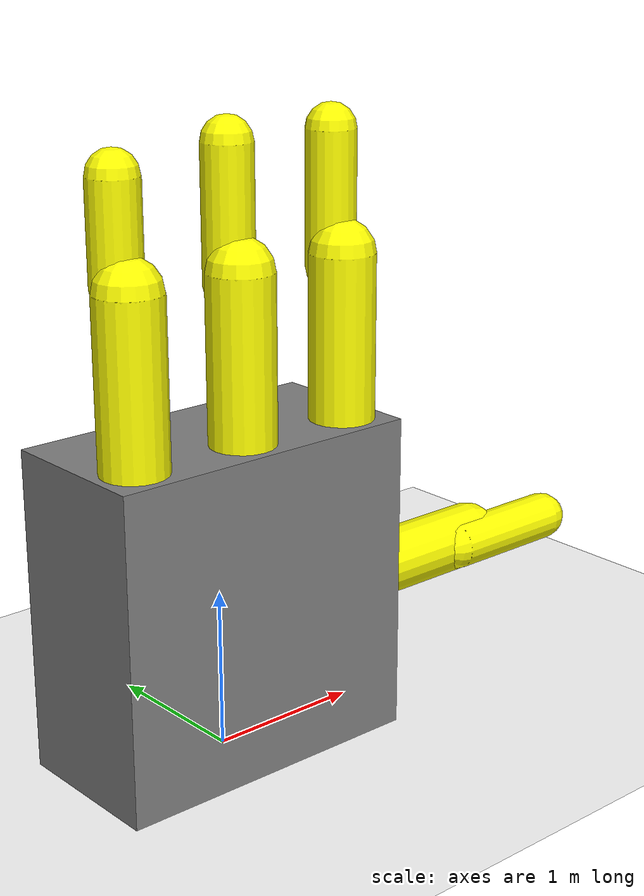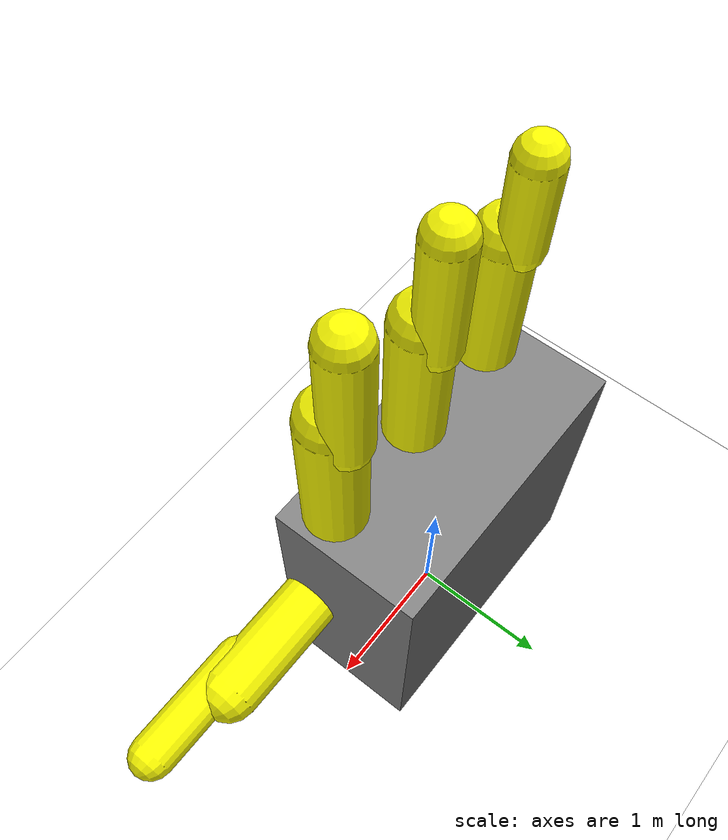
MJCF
<mujoco model="simple-hand-model">
    <option gravity = '0 0 -9.81'/>
    <worldbody>
        <light diffuse = '.5 .5 .5' pos = '0 0 6' dir = '0 0 -1'/>
        <geom type = 'plane' size = '5 5 0.1' rgba = '1 1 1 1'/>
        <body name = 'main' pos = '0 0 1'>
            <joint type = 'free'/>
            <geom type = 'box' size = '1 .5 1'/>
            <body name = 'pinkie' pos = '-0.75 -.25 1.3'>
                <joint type = 'hinge' name = 'pinkie-joint' axis = '1 0 0' range="0 55"/>
                <geom type = 'capsule' size = '.2 .7' rgba = '150 75 0 1'/>
                <body pos = '0 .1 1'>
                    <joint type = 'hinge' name = 'pinkie-tip' axis = '1 0 0' range = '0 45'/>
                    <geom type = 'capsule' size = '.15 .3' rgba = '150 75 0 1'/>
                </body>
            </body>
            <body name = 'middle' pos = '0 -.25 1.3'>
                <joint type = 'hinge' name = 'middle-joint' axis = '1 0 0' range="0 55"/>
                <geom type = 'capsule' size = '.2 .7' rgba = '255 60 0 1'/>
                <body pos = '0 .1  1'>
                    <joint type = 'hinge' name = 'middle-tip' axis = '1 0 0' range = '0 45'/>
                    <geom type = 'capsule' size = '.15 .4' rgba = '150 75 0 1'/>
                </body>
            </body>
            <body name = 'pointer' pos = '0.75 -.25 1.3'>
                <joint type = 'hinge' name = 'pointer-joint' axis = '1 0 0' range="0 55"/>
                <geom type = 'capsule' size = '.2 .7' rgba = '255 60 0 1'/>
                <body pos = '0 .1 1'>
                    <joint type = 'hinge' name = 'pointer-tip' axis = '1 0 0' range = '0 45'/>
                    <geom type = 'capsule' size = '.15 .4' rgba = '150 75 0 1'/>
                </body>
            </body>
            <body name = 'thumb' pos = '1.2 -.3 0' euler = '0 90 0'>
                <joint type = 'hinge' name = 'thumb-joint' axis = '1 0 0' range = '0 90'/>
                <geom type = 'capsule' size = '.2 .6'  rgba = '150 75 0 1'/>
                <body pos = '0 -.1 .8'>
                    <joint type = 'hinge' name = 'thumb-tip' axis = '1 0 0' range = '0 75'/>
                    <geom type = 'capsule' size = '.15 .4' rgba =  '150 75 0 1'/>
                </body>
            </body>
        </body>

    </worldbody>
    <actuator>
        <motor name = 'pinkie-finger' joint = 'pinkie-joint'/>
        <motor name = 'pinkie-finger-tip' joint = 'pinkie-tip'/>
        <motor name = 'middle-finger' joint = 'middle-joint'/>
        <motor name = 'middle-finger-tip' joint = 'middle-tip'/>
        <motor name = 'pointer-finger' joint = 'pointer-joint'/>
        <motor name = 'pointer-finger-tip' joint = 'pointer-tip'/>
        <motor name = 'thumb' joint = 'thumb-joint'/>
        <motor  name = 'thumb-point' joint = 'thumb-tip'/>
    </actuator>
</mujoco>
